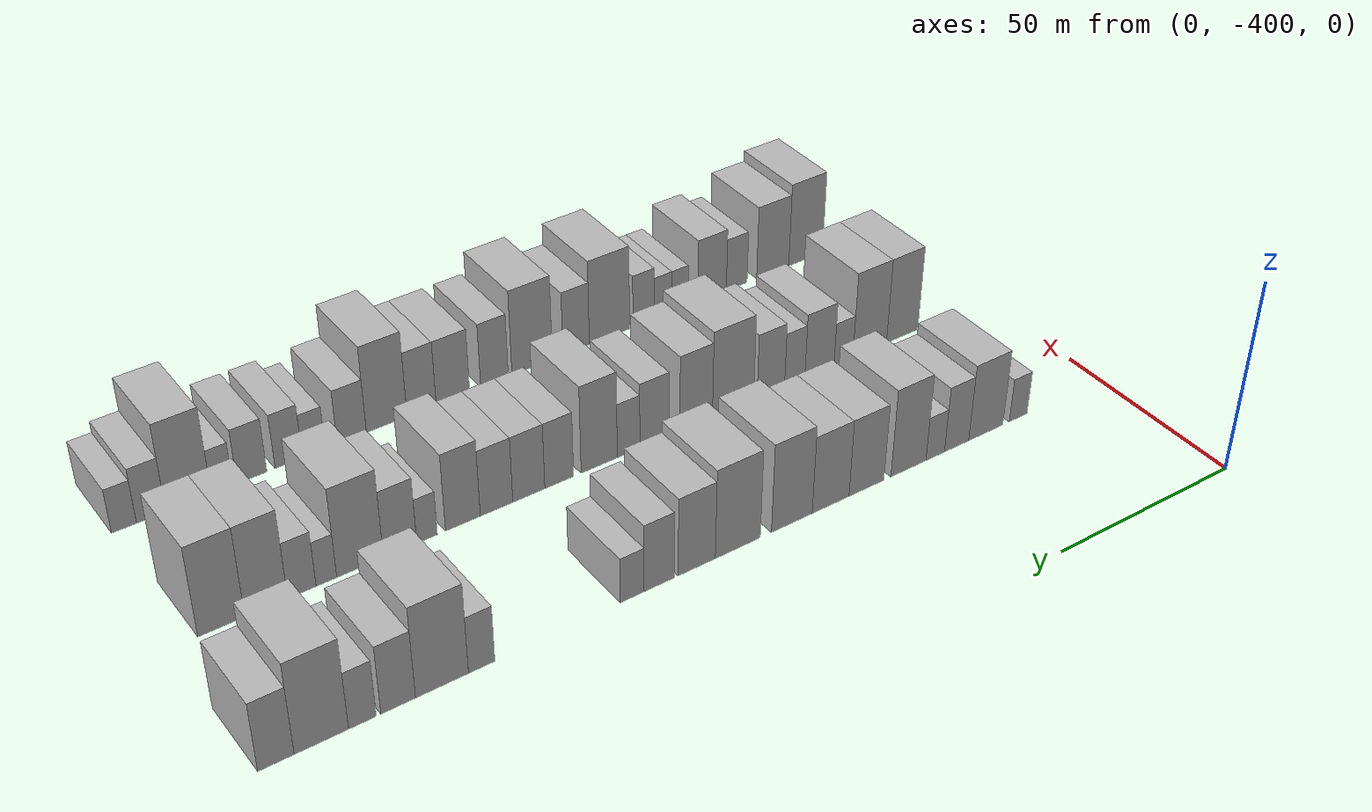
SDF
<sdf version="1.6">
 <world name="default">
  <model name="building_1">
   <static>1</static>
   <pose>50.0000 -374.2624 0 0.000000 0.000000 0.000000</pose>
   <link name="link">
    <pose>0 0 6.00 0 0 0</pose>
    <collision name="collision"><geometry><box><size>20.0000 5.4753 12.0000</size></box></geometry></collision>
    <visual name="visual">
     <cast_shadows>0</cast_shadows>
     <geometry><box><size>20.0000 5.4753 12.0000</size></box></geometry>
     <material>
      <script>
       <uri>model://HANNAS_wall/materials/scripts</uri>
       <uri>model://HANNAS_wall/materials/textures</uri>
       <name>vrc/HANNAS_wall</name>
      </script>
     </material>
    </visual>
   </link>
  </model>
  <model name="building_2">
   <static>1</static>
   <pose>50.0000 -364.3549 0 0.000000 0.000000 0.000000</pose>
   <link name="link">
    <pose>0 0 10.50 0 0 0</pose>
    <collision name="collision"><geometry><box><size>20.0000 10.3397 21.0000</size></box></geometry></collision>
    <visual name="visual">
     <cast_shadows>0</cast_shadows>
     <geometry><box><size>20.0000 10.3397 21.0000</size></box></geometry>
     <material>
      <script>
       <uri>model://HANNAS_wall/materials/scripts</uri>
       <uri>model://HANNAS_wall/materials/textures</uri>
       <name>vrc/HANNAS_wall</name>
      </script>
     </material>
    </visual>
   </link>
  </model>
  <model name="building_3">
   <static>1</static>
   <pose>50.0000 -355.5785 0 0.000000 0.000000 0.000000</pose>
   <link name="link">
    <pose>0 0 9.00 0 0 0</pose>
    <collision name="collision"><geometry><box><size>20.0000 7.2129 18.0000</size></box></geometry></collision>
    <visual name="visual">
     <cast_shadows>0</cast_shadows>
     <geometry><box><size>20.0000 7.2129 18.0000</size></box></geometry>
     <material>
      <script>
       <uri>model://HANNAS_wall/materials/scripts</uri>
       <uri>model://HANNAS_wall/materials/textures</uri>
       <name>vrc/HANNAS_wall</name>
      </script>
     </material>
    </visual>
   </link>
  </model>
  <model name="building_4">
   <static>1</static>
   <pose>50.0000 -349.2453 0 0.000000 0.000000 0.000000</pose>
   <link name="link">
    <pose>0 0 6.00 0 0 0</pose>
    <collision name="collision"><geometry><box><size>20.0000 5.4536 12.0000</size></box></geometry></collision>
    <visual name="visual">
     <cast_shadows>0</cast_shadows>
     <geometry><box><size>20.0000 5.4536 12.0000</size></box></geometry>
     <material>
      <script>
       <uri>model://HANNAS_wall/materials/scripts</uri>
       <uri>model://HANNAS_wall/materials/textures</uri>
       <name>vrc/HANNAS_wall</name>
      </script>
     </material>
    </visual>
   </link>
  </model>
  <model name="building_5">
   <static>1</static>
   <pose>50.0000 -341.4378 0 0.000000 0.000000 0.000000</pose>
   <link name="link">
    <pose>0 0 12.00 0 0 0</pose>
    <collision name="collision"><geometry><box><size>20.0000 10.1614 24.0000</size></box></geometry></collision>
    <visual name="visual">
     <cast_shadows>0</cast_shadows>
     <geometry><box><size>20.0000 10.1614 24.0000</size></box></geometry>
     <material>
      <script>
       <uri>model://HANNAS_wall/materials/scripts</uri>
       <uri>model://HANNAS_wall/materials/textures</uri>
       <name>vrc/HANNAS_wall</name>
      </script>
     </material>
    </visual>
   </link>
  </model>
  <model name="building_6">
   <static>1</static>
   <pose>50.0000 -329.4169 0 0.000000 0.000000 0.000000</pose>
   <link name="link">
    <pose>0 0 10.50 0 0 0</pose>
    <collision name="collision"><geometry><box><size>20.0000 9.8803 21.0000</size></box></geometry></collision>
    <visual name="visual">
     <cast_shadows>0</cast_shadows>
     <geometry><box><size>20.0000 9.8803 21.0000</size></box></geometry>
     <material>
      <script>
       <uri>model://HANNAS_wall/materials/scripts</uri>
       <uri>model://HANNAS_wall/materials/textures</uri>
       <name>vrc/HANNAS_wall</name>
      </script>
     </material>
    </visual>
   </link>
  </model>
  <model name="building_7">
   <static>1</static>
   <pose>50.0000 -319.3622 0 0.000000 0.000000 0.000000</pose>
   <link name="link">
    <pose>0 0 10.50 0 0 0</pose>
    <collision name="collision"><geometry><box><size>20.0000 10.2292 21.0000</size></box></geometry></collision>
    <visual name="visual">
     <cast_shadows>0</cast_shadows>
     <geometry><box><size>20.0000 10.2292 21.0000</size></box></geometry>
     <material>
      <script>
       <uri>model://HANNAS_wall/materials/scripts</uri>
       <uri>model://HANNAS_wall/materials/textures</uri>
       <name>vrc/HANNAS_wall</name>
      </script>
     </material>
    </visual>
   </link>
  </model>
  <model name="building_8">
   <static>1</static>
   <pose>50.0000 -308.7134 0 0.000000 0.000000 0.000000</pose>
   <link name="link">
    <pose>0 0 12.00 0 0 0</pose>
    <collision name="collision"><geometry><box><size>20.0000 11.0682 24.0000</size></box></geometry></collision>
    <visual name="visual">
     <cast_shadows>0</cast_shadows>
     <geometry><box><size>20.0000 11.0682 24.0000</size></box></geometry>
     <material>
      <script>
       <uri>model://HANNAS_wall/materials/scripts</uri>
       <uri>model://HANNAS_wall/materials/textures</uri>
       <name>vrc/HANNAS_wall</name>
      </script>
     </material>
    </visual>
   </link>
  </model>
  <model name="building_9">
   <static>1</static>
   <pose>50.0000 -294.2568 0 0.000000 0.000000 0.000000</pose>
   <link name="link">
    <pose>0 0 12.00 0 0 0</pose>
    <collision name="collision"><geometry><box><size>20.0000 11.8451 24.0000</size></box></geometry></collision>
    <visual name="visual">
     <cast_shadows>0</cast_shadows>
     <geometry><box><size>20.0000 11.8451 24.0000</size></box></geometry>
     <material>
      <script>
       <uri>model://HANNAS_wall/materials/scripts</uri>
       <uri>model://HANNAS_wall/materials/textures</uri>
       <name>vrc/HANNAS_wall</name>
      </script>
     </material>
    </visual>
   </link>
  </model>
  <model name="building_10">
   <static>1</static>
   <pose>50.0000 -283.5182 0 0.000000 0.000000 0.000000</pose>
   <link name="link">
    <pose>0 0 10.50 0 0 0</pose>
    <collision name="collision"><geometry><box><size>20.0000 9.6320 21.0000</size></box></geometry></collision>
    <visual name="visual">
     <cast_shadows>0</cast_shadows>
     <geometry><box><size>20.0000 9.6320 21.0000</size></box></geometry>
     <material>
      <script>
       <uri>model://HANNAS_wall/materials/scripts</uri>
       <uri>model://HANNAS_wall/materials/textures</uri>
       <name>vrc/HANNAS_wall</name>
      </script>
     </material>
    </visual>
   </link>
  </model>
  <model name="building_11">
   <static>1</static>
   <pose>50.0000 -273.9121 0 0.000000 0.000000 0.000000</pose>
   <link name="link">
    <pose>0 0 9.00 0 0 0</pose>
    <collision name="collision"><geometry><box><size>20.0000 7.5804 18.0000</size></box></geometry></collision>
    <visual name="visual">
     <cast_shadows>0</cast_shadows>
     <geometry><box><size>20.0000 7.5804 18.0000</size></box></geometry>
     <material>
      <script>
       <uri>model://HANNAS_wall/materials/scripts</uri>
       <uri>model://HANNAS_wall/materials/textures</uri>
       <name>vrc/HANNAS_wall</name>
      </script>
     </material>
    </visual>
   </link>
  </model>
  <model name="building_12">
   <static>1</static>
   <pose>50.0000 -267.1441 0 0.000000 0.000000 0.000000</pose>
   <link name="link">
    <pose>0 0 6.00 0 0 0</pose>
    <collision name="collision"><geometry><box><size>20.0000 5.9556 12.0000</size></box></geometry></collision>
    <visual name="visual">
     <cast_shadows>0</cast_shadows>
     <geometry><box><size>20.0000 5.9556 12.0000</size></box></geometry>
     <material>
      <script>
       <uri>model://HANNAS_wall/materials/scripts</uri>
       <uri>model://HANNAS_wall/materials/textures</uri>
       <name>vrc/HANNAS_wall</name>
      </script>
     </material>
    </visual>
   </link>
  </model>
  <model name="building_13">
   <static>1</static>
   <pose>50.0000 -231.0191 0 0.000000 0.000000 0.000000</pose>
   <link name="link">
    <pose>0 0 7.50 0 0 0</pose>
    <collision name="collision"><geometry><box><size>20.0000 6.0981 15.0000</size></box></geometry></collision>
    <visual name="visual">
     <cast_shadows>0</cast_shadows>
     <geometry><box><size>20.0000 6.0981 15.0000</size></box></geometry>
     <material>
      <script>
       <uri>model://HANNAS_wall/materials/scripts</uri>
       <uri>model://HANNAS_wall/materials/textures</uri>
       <name>vrc/HANNAS_wall</name>
      </script>
     </material>
    </visual>
   </link>
  </model>
  <model name="building_14">
   <static>1</static>
   <pose>50.0000 -221.9719 0 0.000000 0.000000 0.000000</pose>
   <link name="link">
    <pose>0 0 12.00 0 0 0</pose>
    <collision name="collision"><geometry><box><size>20.0000 11.9962 24.0000</size></box></geometry></collision>
    <visual name="visual">
     <cast_shadows>0</cast_shadows>
     <geometry><box><size>20.0000 11.9962 24.0000</size></box></geometry>
     <material>
      <script>
       <uri>model://HANNAS_wall/materials/scripts</uri>
       <uri>model://HANNAS_wall/materials/textures</uri>
       <name>vrc/HANNAS_wall</name>
      </script>
     </material>
    </visual>
   </link>
  </model>
  <model name="building_15">
   <static>1</static>
   <pose>50.0000 -212.1358 0 0.000000 0.000000 0.000000</pose>
   <link name="link">
    <pose>0 0 9.00 0 0 0</pose>
    <collision name="collision"><geometry><box><size>20.0000 7.6759 18.0000</size></box></geometry></collision>
    <visual name="visual">
     <cast_shadows>0</cast_shadows>
     <geometry><box><size>20.0000 7.6759 18.0000</size></box></geometry>
     <material>
      <script>
       <uri>model://HANNAS_wall/materials/scripts</uri>
       <uri>model://HANNAS_wall/materials/textures</uri>
       <name>vrc/HANNAS_wall</name>
      </script>
     </material>
    </visual>
   </link>
  </model>
  <model name="building_16">
   <static>1</static>
   <pose>50.0000 -204.2858 0 0.000000 0.000000 0.000000</pose>
   <link name="link">
    <pose>0 0 7.50 0 0 0</pose>
    <collision name="collision"><geometry><box><size>20.0000 6.0241 15.0000</size></box></geometry></collision>
    <visual name="visual">
     <cast_shadows>0</cast_shadows>
     <geometry><box><size>20.0000 6.0241 15.0000</size></box></geometry>
     <material>
      <script>
       <uri>model://HANNAS_wall/materials/scripts</uri>
       <uri>model://HANNAS_wall/materials/textures</uri>
       <name>vrc/HANNAS_wall</name>
      </script>
     </material>
    </visual>
   </link>
  </model>
  <model name="building_17">
   <static>1</static>
   <pose>50.0000 -195.4628 0 0.000000 0.000000 0.000000</pose>
   <link name="link">
    <pose>0 0 12.00 0 0 0</pose>
    <collision name="collision"><geometry><box><size>20.0000 11.6219 24.0000</size></box></geometry></collision>
    <visual name="visual">
     <cast_shadows>0</cast_shadows>
     <geometry><box><size>20.0000 11.6219 24.0000</size></box></geometry>
     <material>
      <script>
       <uri>model://HANNAS_wall/materials/scripts</uri>
       <uri>model://HANNAS_wall/materials/textures</uri>
       <name>vrc/HANNAS_wall</name>
      </script>
     </material>
    </visual>
   </link>
  </model>
  <model name="building_18">
   <static>1</static>
   <pose>50.0000 -185.8370 0 0.000000 0.000000 0.000000</pose>
   <link name="link">
    <pose>0 0 9.00 0 0 0</pose>
    <collision name="collision"><geometry><box><size>20.0000 7.6296 18.0000</size></box></geometry></collision>
    <visual name="visual">
     <cast_shadows>0</cast_shadows>
     <geometry><box><size>20.0000 7.6296 18.0000</size></box></geometry>
     <material>
      <script>
       <uri>model://HANNAS_wall/materials/scripts</uri>
       <uri>model://HANNAS_wall/materials/textures</uri>
       <name>vrc/HANNAS_wall</name>
      </script>
     </material>
    </visual>
   </link>
  </model>
  <model name="building_84">
   <static>1</static>
   <pose>90.0000 -373.0850 0 0.000000 0.000000 0.000000</pose>
   <link name="link">
    <pose>0 0 12.00 0 0 0</pose>
    <collision name="collision"><geometry><box><size>20.0000 9.8300 24.0000</size></box></geometry></collision>
    <visual name="visual">
     <cast_shadows>0</cast_shadows>
     <geometry><box><size>20.0000 9.8300 24.0000</size></box></geometry>
     <material>
      <script>
       <uri>model://HANNAS_wall/materials/scripts</uri>
       <uri>model://HANNAS_wall/materials/textures</uri>
       <name>vrc/HANNAS_wall</name>
      </script>
     </material>
    </visual>
   </link>
  </model>
  <model name="building_85">
   <static>1</static>
   <pose>90.0000 -362.9662 0 0.000000 0.000000 0.000000</pose>
   <link name="link">
    <pose>0 0 12.00 0 0 0</pose>
    <collision name="collision"><geometry><box><size>20.0000 10.4076 24.0000</size></box></geometry></collision>
    <visual name="visual">
     <cast_shadows>0</cast_shadows>
     <geometry><box><size>20.0000 10.4076 24.0000</size></box></geometry>
     <material>
      <script>
       <uri>model://HANNAS_wall/materials/scripts</uri>
       <uri>model://HANNAS_wall/materials/textures</uri>
       <name>vrc/HANNAS_wall</name>
      </script>
     </material>
    </visual>
   </link>
  </model>
  <model name="building_86">
   <static>1</static>
   <pose>90.0000 -354.8962 0 0.000000 0.000000 0.000000</pose>
   <link name="link">
    <pose>0 0 6.00 0 0 0</pose>
    <collision name="collision"><geometry><box><size>20.0000 5.7325 12.0000</size></box></geometry></collision>
    <visual name="visual">
     <cast_shadows>0</cast_shadows>
     <geometry><box><size>20.0000 5.7325 12.0000</size></box></geometry>
     <material>
      <script>
       <uri>model://HANNAS_wall/materials/scripts</uri>
       <uri>model://HANNAS_wall/materials/textures</uri>
       <name>vrc/HANNAS_wall</name>
      </script>
     </material>
    </visual>
   </link>
  </model>
  <model name="building_87">
   <static>1</static>
   <pose>90.0000 -347.6362 0 0.000000 0.000000 0.000000</pose>
   <link name="link">
    <pose>0 0 9.00 0 0 0</pose>
    <collision name="collision"><geometry><box><size>20.0000 8.7874 18.0000</size></box></geometry></collision>
    <visual name="visual">
     <cast_shadows>0</cast_shadows>
     <geometry><box><size>20.0000 8.7874 18.0000</size></box></geometry>
     <material>
      <script>
       <uri>model://HANNAS_wall/materials/scripts</uri>
       <uri>model://HANNAS_wall/materials/textures</uri>
       <name>vrc/HANNAS_wall</name>
      </script>
     </material>
    </visual>
   </link>
  </model>
  <model name="building_88">
   <static>1</static>
   <pose>90.0000 -340.2338 0 0.000000 0.000000 0.000000</pose>
   <link name="link">
    <pose>0 0 7.50 0 0 0</pose>
    <collision name="collision"><geometry><box><size>20.0000 6.0174 15.0000</size></box></geometry></collision>
    <visual name="visual">
     <cast_shadows>0</cast_shadows>
     <geometry><box><size>20.0000 6.0174 15.0000</size></box></geometry>
     <material>
      <script>
       <uri>model://HANNAS_wall/materials/scripts</uri>
       <uri>model://HANNAS_wall/materials/textures</uri>
       <name>vrc/HANNAS_wall</name>
      </script>
     </material>
    </visual>
   </link>
  </model>
  <model name="building_89">
   <static>1</static>
   <pose>90.0000 -333.1998 0 0.000000 0.000000 0.000000</pose>
   <link name="link">
    <pose>0 0 9.00 0 0 0</pose>
    <collision name="collision"><geometry><box><size>20.0000 8.0504 18.0000</size></box></geometry></collision>
    <visual name="visual">
     <cast_shadows>0</cast_shadows>
     <geometry><box><size>20.0000 8.0504 18.0000</size></box></geometry>
     <material>
      <script>
       <uri>model://HANNAS_wall/materials/scripts</uri>
       <uri>model://HANNAS_wall/materials/textures</uri>
       <name>vrc/HANNAS_wall</name>
      </script>
     </material>
    </visual>
   </link>
  </model>
  <model name="building_90">
   <static>1</static>
   <pose>90.0000 -322.2771 0 0.000000 0.000000 0.000000</pose>
   <link name="link">
    <pose>0 0 12.00 0 0 0</pose>
    <collision name="collision"><geometry><box><size>20.0000 11.7950 24.0000</size></box></geometry></collision>
    <visual name="visual">
     <cast_shadows>0</cast_shadows>
     <geometry><box><size>20.0000 11.7950 24.0000</size></box></geometry>
     <material>
      <script>
       <uri>model://HANNAS_wall/materials/scripts</uri>
       <uri>model://HANNAS_wall/materials/textures</uri>
       <name>vrc/HANNAS_wall</name>
      </script>
     </material>
    </visual>
   </link>
  </model>
  <model name="building_91">
   <static>1</static>
   <pose>90.0000 -311.7800 0 0.000000 0.000000 0.000000</pose>
   <link name="link">
    <pose>0 0 10.50 0 0 0</pose>
    <collision name="collision"><geometry><box><size>20.0000 9.1992 21.0000</size></box></geometry></collision>
    <visual name="visual">
     <cast_shadows>0</cast_shadows>
     <geometry><box><size>20.0000 9.1992 21.0000</size></box></geometry>
     <material>
      <script>
       <uri>model://HANNAS_wall/materials/scripts</uri>
       <uri>model://HANNAS_wall/materials/textures</uri>
       <name>vrc/HANNAS_wall</name>
      </script>
     </material>
    </visual>
   </link>
  </model>
  <model name="building_92">
   <static>1</static>
   <pose>90.0000 -300.1970 0 0.000000 0.000000 0.000000</pose>
   <link name="link">
    <pose>0 0 9.00 0 0 0</pose>
    <collision name="collision"><geometry><box><size>20.0000 7.9668 18.0000</size></box></geometry></collision>
    <visual name="visual">
     <cast_shadows>0</cast_shadows>
     <geometry><box><size>20.0000 7.9668 18.0000</size></box></geometry>
     <material>
      <script>
       <uri>model://HANNAS_wall/materials/scripts</uri>
       <uri>model://HANNAS_wall/materials/textures</uri>
       <name>vrc/HANNAS_wall</name>
      </script>
     </material>
    </visual>
   </link>
  </model>
  <model name="building_93">
   <static>1</static>
   <pose>90.0000 -293.1431 0 0.000000 0.000000 0.000000</pose>
   <link name="link">
    <pose>0 0 7.50 0 0 0</pose>
    <collision name="collision"><geometry><box><size>20.0000 6.1410 15.0000</size></box></geometry></collision>
    <visual name="visual">
     <cast_shadows>0</cast_shadows>
     <geometry><box><size>20.0000 6.1410 15.0000</size></box></geometry>
     <material>
      <script>
       <uri>model://HANNAS_wall/materials/scripts</uri>
       <uri>model://HANNAS_wall/materials/textures</uri>
       <name>vrc/HANNAS_wall</name>
      </script>
     </material>
    </visual>
   </link>
  </model>
  <model name="building_94">
   <static>1</static>
   <pose>90.0000 -285.2422 0 0.000000 0.000000 0.000000</pose>
   <link name="link">
    <pose>0 0 12.00 0 0 0</pose>
    <collision name="collision"><geometry><box><size>20.0000 9.6608 24.0000</size></box></geometry></collision>
    <visual name="visual">
     <cast_shadows>0</cast_shadows>
     <geometry><box><size>20.0000 9.6608 24.0000</size></box></geometry>
     <material>
      <script>
       <uri>model://HANNAS_wall/materials/scripts</uri>
       <uri>model://HANNAS_wall/materials/textures</uri>
       <name>vrc/HANNAS_wall</name>
      </script>
     </material>
    </visual>
   </link>
  </model>
  <model name="building_95">
   <static>1</static>
   <pose>90.0000 -274.6562 0 0.000000 0.000000 0.000000</pose>
   <link name="link">
    <pose>0 0 9.00 0 0 0</pose>
    <collision name="collision"><geometry><box><size>20.0000 7.5111 18.0000</size></box></geometry></collision>
    <visual name="visual">
     <cast_shadows>0</cast_shadows>
     <geometry><box><size>20.0000 7.5111 18.0000</size></box></geometry>
     <material>
      <script>
       <uri>model://HANNAS_wall/materials/scripts</uri>
       <uri>model://HANNAS_wall/materials/textures</uri>
       <name>vrc/HANNAS_wall</name>
      </script>
     </material>
    </visual>
   </link>
  </model>
  <model name="building_96">
   <static>1</static>
   <pose>90.0000 -266.7698 0 0.000000 0.000000 0.000000</pose>
   <link name="link">
    <pose>0 0 9.00 0 0 0</pose>
    <collision name="collision"><geometry><box><size>20.0000 8.2617 18.0000</size></box></geometry></collision>
    <visual name="visual">
     <cast_shadows>0</cast_shadows>
     <geometry><box><size>20.0000 8.2617 18.0000</size></box></geometry>
     <material>
      <script>
       <uri>model://HANNAS_wall/materials/scripts</uri>
       <uri>model://HANNAS_wall/materials/textures</uri>
       <name>vrc/HANNAS_wall</name>
      </script>
     </material>
    </visual>
   </link>
  </model>
  <model name="building_97">
   <static>1</static>
   <pose>90.0000 -258.5231 0 0.000000 0.000000 0.000000</pose>
   <link name="link">
    <pose>0 0 9.00 0 0 0</pose>
    <collision name="collision"><geometry><box><size>20.0000 8.2316 18.0000</size></box></geometry></collision>
    <visual name="visual">
     <cast_shadows>0</cast_shadows>
     <geometry><box><size>20.0000 8.2316 18.0000</size></box></geometry>
     <material>
      <script>
       <uri>model://HANNAS_wall/materials/scripts</uri>
       <uri>model://HANNAS_wall/materials/textures</uri>
       <name>vrc/HANNAS_wall</name>
      </script>
     </material>
    </visual>
   </link>
  </model>
  <model name="building_98">
   <static>1</static>
   <pose>90.0000 -250.0714 0 0.000000 0.000000 0.000000</pose>
   <link name="link">
    <pose>0 0 10.50 0 0 0</pose>
    <collision name="collision"><geometry><box><size>20.0000 8.6719 21.0000</size></box></geometry></collision>
    <visual name="visual">
     <cast_shadows>0</cast_shadows>
     <geometry><box><size>20.0000 8.6719 21.0000</size></box></geometry>
     <material>
      <script>
       <uri>model://HANNAS_wall/materials/scripts</uri>
       <uri>model://HANNAS_wall/materials/textures</uri>
       <name>vrc/HANNAS_wall</name>
      </script>
     </material>
    </visual>
   </link>
  </model>
  <model name="building_99">
   <static>1</static>
   <pose>90.0000 -241.2178 0 0.000000 0.000000 0.000000</pose>
   <link name="link">
    <pose>0 0 6.00 0 0 0</pose>
    <collision name="collision"><geometry><box><size>20.0000 5.0352 12.0000</size></box></geometry></collision>
    <visual name="visual">
     <cast_shadows>0</cast_shadows>
     <geometry><box><size>20.0000 5.0352 12.0000</size></box></geometry>
     <material>
      <script>
       <uri>model://HANNAS_wall/materials/scripts</uri>
       <uri>model://HANNAS_wall/materials/textures</uri>
       <name>vrc/HANNAS_wall</name>
      </script>
     </material>
    </visual>
   </link>
  </model>
  <model name="building_100">
   <static>1</static>
   <pose>90.0000 -234.6747 0 0.000000 0.000000 0.000000</pose>
   <link name="link">
    <pose>0 0 9.00 0 0 0</pose>
    <collision name="collision"><geometry><box><size>20.0000 8.0510 18.0000</size></box></geometry></collision>
    <visual name="visual">
     <cast_shadows>0</cast_shadows>
     <geometry><box><size>20.0000 8.0510 18.0000</size></box></geometry>
     <material>
      <script>
       <uri>model://HANNAS_wall/materials/scripts</uri>
       <uri>model://HANNAS_wall/materials/textures</uri>
       <name>vrc/HANNAS_wall</name>
      </script>
     </material>
    </visual>
   </link>
  </model>
  <model name="building_101">
   <static>1</static>
   <pose>90.0000 -225.1127 0 0.000000 0.000000 0.000000</pose>
   <link name="link">
    <pose>0 0 12.00 0 0 0</pose>
    <collision name="collision"><geometry><box><size>20.0000 11.0730 24.0000</size></box></geometry></collision>
    <visual name="visual">
     <cast_shadows>0</cast_shadows>
     <geometry><box><size>20.0000 11.0730 24.0000</size></box></geometry>
     <material>
      <script>
       <uri>model://HANNAS_wall/materials/scripts</uri>
       <uri>model://HANNAS_wall/materials/textures</uri>
       <name>vrc/HANNAS_wall</name>
      </script>
     </material>
    </visual>
   </link>
  </model>
  <model name="building_102">
   <static>1</static>
   <pose>90.0000 -217.1694 0 0.000000 0.000000 0.000000</pose>
   <link name="link">
    <pose>0 0 6.00 0 0 0</pose>
    <collision name="collision"><geometry><box><size>20.0000 4.8136 12.0000</size></box></geometry></collision>
    <visual name="visual">
     <cast_shadows>0</cast_shadows>
     <geometry><box><size>20.0000 4.8136 12.0000</size></box></geometry>
     <material>
      <script>
       <uri>model://HANNAS_wall/materials/scripts</uri>
       <uri>model://HANNAS_wall/materials/textures</uri>
       <name>vrc/HANNAS_wall</name>
      </script>
     </material>
    </visual>
   </link>
  </model>
  <model name="building_103">
   <static>1</static>
   <pose>90.0000 -211.4903 0 0.000000 0.000000 0.000000</pose>
   <link name="link">
    <pose>0 0 7.50 0 0 0</pose>
    <collision name="collision"><geometry><box><size>20.0000 6.5446 15.0000</size></box></geometry></collision>
    <visual name="visual">
     <cast_shadows>0</cast_shadows>
     <geometry><box><size>20.0000 6.5446 15.0000</size></box></geometry>
     <material>
      <script>
       <uri>model://HANNAS_wall/materials/scripts</uri>
       <uri>model://HANNAS_wall/materials/textures</uri>
       <name>vrc/HANNAS_wall</name>
      </script>
     </material>
    </visual>
   </link>
  </model>
  <model name="building_104">
   <static>1</static>
   <pose>90.0000 -203.3711 0 0.000000 0.000000 0.000000</pose>
   <link name="link">
    <pose>0 0 12.00 0 0 0</pose>
    <collision name="collision"><geometry><box><size>20.0000 9.6937 24.0000</size></box></geometry></collision>
    <visual name="visual">
     <cast_shadows>0</cast_shadows>
     <geometry><box><size>20.0000 9.6937 24.0000</size></box></geometry>
     <material>
      <script>
       <uri>model://HANNAS_wall/materials/scripts</uri>
       <uri>model://HANNAS_wall/materials/textures</uri>
       <name>vrc/HANNAS_wall</name>
      </script>
     </material>
    </visual>
   </link>
  </model>
  <model name="building_105">
   <static>1</static>
   <pose>90.0000 -193.3030 0 0.000000 0.000000 0.000000</pose>
   <link name="link">
    <pose>0 0 12.00 0 0 0</pose>
    <collision name="collision"><geometry><box><size>20.0000 10.4424 24.0000</size></box></geometry></collision>
    <visual name="visual">
     <cast_shadows>0</cast_shadows>
     <geometry><box><size>20.0000 10.4424 24.0000</size></box></geometry>
     <material>
      <script>
       <uri>model://HANNAS_wall/materials/scripts</uri>
       <uri>model://HANNAS_wall/materials/textures</uri>
       <name>vrc/HANNAS_wall</name>
      </script>
     </material>
    </visual>
   </link>
  </model>
  <model name="building_164">
   <static>1</static>
   <pose>130.0000 -374.5532 0 0.000000 0.000000 0.000000</pose>
   <link name="link">
    <pose>0 0 12.00 0 0 0</pose>
    <collision name="collision"><geometry><box><size>20.0000 10.8935 24.0000</size></box></geometry></collision>
    <visual name="visual">
     <cast_shadows>0</cast_shadows>
     <geometry><box><size>20.0000 10.8935 24.0000</size></box></geometry>
     <material>
      <script>
       <uri>model://HANNAS_wall/materials/scripts</uri>
       <uri>model://HANNAS_wall/materials/textures</uri>
       <name>vrc/HANNAS_wall</name>
      </script>
     </material>
    </visual>
   </link>
  </model>
  <model name="building_165">
   <static>1</static>
   <pose>130.0000 -364.0138 0 0.000000 0.000000 0.000000</pose>
   <link name="link">
    <pose>0 0 10.50 0 0 0</pose>
    <collision name="collision"><geometry><box><size>20.0000 10.1853 21.0000</size></box></geometry></collision>
    <visual name="visual">
     <cast_shadows>0</cast_shadows>
     <geometry><box><size>20.0000 10.1853 21.0000</size></box></geometry>
     <material>
      <script>
       <uri>model://HANNAS_wall/materials/scripts</uri>
       <uri>model://HANNAS_wall/materials/textures</uri>
       <name>vrc/HANNAS_wall</name>
      </script>
     </material>
    </visual>
   </link>
  </model>
  <model name="building_166">
   <static>1</static>
   <pose>130.0000 -352.7016 0 0.000000 0.000000 0.000000</pose>
   <link name="link">
    <pose>0 0 7.50 0 0 0</pose>
    <collision name="collision"><geometry><box><size>20.0000 6.4391 15.0000</size></box></geometry></collision>
    <visual name="visual">
     <cast_shadows>0</cast_shadows>
     <geometry><box><size>20.0000 6.4391 15.0000</size></box></geometry>
     <material>
      <script>
       <uri>model://HANNAS_wall/materials/scripts</uri>
       <uri>model://HANNAS_wall/materials/textures</uri>
       <name>vrc/HANNAS_wall</name>
      </script>
     </material>
    </visual>
   </link>
  </model>
  <model name="building_167">
   <static>1</static>
   <pose>130.0000 -345.1018 0 0.000000 0.000000 0.000000</pose>
   <link name="link">
    <pose>0 0 9.00 0 0 0</pose>
    <collision name="collision"><geometry><box><size>20.0000 8.7606 18.0000</size></box></geometry></collision>
    <visual name="visual">
     <cast_shadows>0</cast_shadows>
     <geometry><box><size>20.0000 8.7606 18.0000</size></box></geometry>
     <material>
      <script>
       <uri>model://HANNAS_wall/materials/scripts</uri>
       <uri>model://HANNAS_wall/materials/textures</uri>
       <name>vrc/HANNAS_wall</name>
      </script>
     </material>
    </visual>
   </link>
  </model>
  <model name="building_168">
   <static>1</static>
   <pose>130.0000 -335.2786 0 0.000000 0.000000 0.000000</pose>
   <link name="link">
    <pose>0 0 6.00 0 0 0</pose>
    <collision name="collision"><geometry><box><size>20.0000 4.8858 12.0000</size></box></geometry></collision>
    <visual name="visual">
     <cast_shadows>0</cast_shadows>
     <geometry><box><size>20.0000 4.8858 12.0000</size></box></geometry>
     <material>
      <script>
       <uri>model://HANNAS_wall/materials/scripts</uri>
       <uri>model://HANNAS_wall/materials/textures</uri>
       <name>vrc/HANNAS_wall</name>
      </script>
     </material>
    </visual>
   </link>
  </model>
  <model name="building_169">
   <static>1</static>
   <pose>130.0000 -330.2200 0 0.000000 0.000000 0.000000</pose>
   <link name="link">
    <pose>0 0 6.00 0 0 0</pose>
    <collision name="collision"><geometry><box><size>20.0000 5.2313 12.0000</size></box></geometry></collision>
    <visual name="visual">
     <cast_shadows>0</cast_shadows>
     <geometry><box><size>20.0000 5.2313 12.0000</size></box></geometry>
     <material>
      <script>
       <uri>model://HANNAS_wall/materials/scripts</uri>
       <uri>model://HANNAS_wall/materials/textures</uri>
       <name>vrc/HANNAS_wall</name>
      </script>
     </material>
    </visual>
   </link>
  </model>
  <model name="building_170">
   <static>1</static>
   <pose>130.0000 -324.4595 0 0.000000 0.000000 0.000000</pose>
   <link name="link">
    <pose>0 0 7.50 0 0 0</pose>
    <collision name="collision"><geometry><box><size>20.0000 6.2897 15.0000</size></box></geometry></collision>
    <visual name="visual">
     <cast_shadows>0</cast_shadows>
     <geometry><box><size>20.0000 6.2897 15.0000</size></box></geometry>
     <material>
      <script>
       <uri>model://HANNAS_wall/materials/scripts</uri>
       <uri>model://HANNAS_wall/materials/textures</uri>
       <name>vrc/HANNAS_wall</name>
      </script>
     </material>
    </visual>
   </link>
  </model>
  <model name="building_171">
   <static>1</static>
   <pose>130.0000 -314.4628 0 0.000000 0.000000 0.000000</pose>
   <link name="link">
    <pose>0 0 12.00 0 0 0</pose>
    <collision name="collision"><geometry><box><size>20.0000 11.7036 24.0000</size></box></geometry></collision>
    <visual name="visual">
     <cast_shadows>0</cast_shadows>
     <geometry><box><size>20.0000 11.7036 24.0000</size></box></geometry>
     <material>
      <script>
       <uri>model://HANNAS_wall/materials/scripts</uri>
       <uri>model://HANNAS_wall/materials/textures</uri>
       <name>vrc/HANNAS_wall</name>
      </script>
     </material>
    </visual>
   </link>
  </model>
  <model name="building_172">
   <static>1</static>
   <pose>130.0000 -304.8387 0 0.000000 0.000000 0.000000</pose>
   <link name="link">
    <pose>0 0 9.00 0 0 0</pose>
    <collision name="collision"><geometry><box><size>20.0000 7.5446 18.0000</size></box></geometry></collision>
    <visual name="visual">
     <cast_shadows>0</cast_shadows>
     <geometry><box><size>20.0000 7.5446 18.0000</size></box></geometry>
     <material>
      <script>
       <uri>model://HANNAS_wall/materials/scripts</uri>
       <uri>model://HANNAS_wall/materials/textures</uri>
       <name>vrc/HANNAS_wall</name>
      </script>
     </material>
    </visual>
   </link>
  </model>
  <model name="building_173">
   <static>1</static>
   <pose>130.0000 -292.4309 0 0.000000 0.000000 0.000000</pose>
   <link name="link">
    <pose>0 0 12.00 0 0 0</pose>
    <collision name="collision"><geometry><box><size>20.0000 11.2710 24.0000</size></box></geometry></collision>
    <visual name="visual">
     <cast_shadows>0</cast_shadows>
     <geometry><box><size>20.0000 11.2710 24.0000</size></box></geometry>
     <material>
      <script>
       <uri>model://HANNAS_wall/materials/scripts</uri>
       <uri>model://HANNAS_wall/materials/textures</uri>
       <name>vrc/HANNAS_wall</name>
      </script>
     </material>
    </visual>
   </link>
  </model>
  <model name="building_174">
   <static>1</static>
   <pose>130.0000 -282.0168 0 0.000000 0.000000 0.000000</pose>
   <link name="link">
    <pose>0 0 9.00 0 0 0</pose>
    <collision name="collision"><geometry><box><size>20.0000 7.5571 18.0000</size></box></geometry></collision>
    <visual name="visual">
     <cast_shadows>0</cast_shadows>
     <geometry><box><size>20.0000 7.5571 18.0000</size></box></geometry>
     <material>
      <script>
       <uri>model://HANNAS_wall/materials/scripts</uri>
       <uri>model://HANNAS_wall/materials/textures</uri>
       <name>vrc/HANNAS_wall</name>
      </script>
     </material>
    </visual>
   </link>
  </model>
  <model name="building_175">
   <static>1</static>
   <pose>130.0000 -270.7511 0 0.000000 0.000000 0.000000</pose>
   <link name="link">
    <pose>0 0 9.00 0 0 0</pose>
    <collision name="collision"><geometry><box><size>20.0000 8.9744 18.0000</size></box></geometry></collision>
    <visual name="visual">
     <cast_shadows>0</cast_shadows>
     <geometry><box><size>20.0000 8.9744 18.0000</size></box></geometry>
     <material>
      <script>
       <uri>model://HANNAS_wall/materials/scripts</uri>
       <uri>model://HANNAS_wall/materials/textures</uri>
       <name>vrc/HANNAS_wall</name>
      </script>
     </material>
    </visual>
   </link>
  </model>
  <model name="building_176">
   <static>1</static>
   <pose>130.0000 -262.4172 0 0.000000 0.000000 0.000000</pose>
   <link name="link">
    <pose>0 0 9.00 0 0 0</pose>
    <collision name="collision"><geometry><box><size>20.0000 7.6933 18.0000</size></box></geometry></collision>
    <visual name="visual">
     <cast_shadows>0</cast_shadows>
     <geometry><box><size>20.0000 7.6933 18.0000</size></box></geometry>
     <material>
      <script>
       <uri>model://HANNAS_wall/materials/scripts</uri>
       <uri>model://HANNAS_wall/materials/textures</uri>
       <name>vrc/HANNAS_wall</name>
      </script>
     </material>
    </visual>
   </link>
  </model>
  <model name="building_177">
   <static>1</static>
   <pose>130.0000 -253.2876 0 0.000000 0.000000 0.000000</pose>
   <link name="link">
    <pose>0 0 12.00 0 0 0</pose>
    <collision name="collision"><geometry><box><size>20.0000 10.5659 24.0000</size></box></geometry></collision>
    <visual name="visual">
     <cast_shadows>0</cast_shadows>
     <geometry><box><size>20.0000 10.5659 24.0000</size></box></geometry>
     <material>
      <script>
       <uri>model://HANNAS_wall/materials/scripts</uri>
       <uri>model://HANNAS_wall/materials/textures</uri>
       <name>vrc/HANNAS_wall</name>
      </script>
     </material>
    </visual>
   </link>
  </model>
  <model name="building_178">
   <static>1</static>
   <pose>130.0000 -244.2714 0 0.000000 0.000000 0.000000</pose>
   <link name="link">
    <pose>0 0 7.50 0 0 0</pose>
    <collision name="collision"><geometry><box><size>20.0000 7.4665 15.0000</size></box></geometry></collision>
    <visual name="visual">
     <cast_shadows>0</cast_shadows>
     <geometry><box><size>20.0000 7.4665 15.0000</size></box></geometry>
     <material>
      <script>
       <uri>model://HANNAS_wall/materials/scripts</uri>
       <uri>model://HANNAS_wall/materials/textures</uri>
       <name>vrc/HANNAS_wall</name>
      </script>
     </material>
    </visual>
   </link>
  </model>
  <model name="building_179">
   <static>1</static>
   <pose>130.0000 -234.6670 0 0.000000 0.000000 0.000000</pose>
   <link name="link">
    <pose>0 0 6.00 0 0 0</pose>
    <collision name="collision"><geometry><box><size>20.0000 5.7423 12.0000</size></box></geometry></collision>
    <visual name="visual">
     <cast_shadows>0</cast_shadows>
     <geometry><box><size>20.0000 5.7423 12.0000</size></box></geometry>
     <material>
      <script>
       <uri>model://HANNAS_wall/materials/scripts</uri>
       <uri>model://HANNAS_wall/materials/textures</uri>
       <name>vrc/HANNAS_wall</name>
      </script>
     </material>
    </visual>
   </link>
  </model>
  <model name="building_180">
   <static>1</static>
   <pose>130.0000 -228.4150 0 0.000000 0.000000 0.000000</pose>
   <link name="link">
    <pose>0 0 7.50 0 0 0</pose>
    <collision name="collision"><geometry><box><size>20.0000 6.7617 15.0000</size></box></geometry></collision>
    <visual name="visual">
     <cast_shadows>0</cast_shadows>
     <geometry><box><size>20.0000 6.7617 15.0000</size></box></geometry>
     <material>
      <script>
       <uri>model://HANNAS_wall/materials/scripts</uri>
       <uri>model://HANNAS_wall/materials/textures</uri>
       <name>vrc/HANNAS_wall</name>
      </script>
     </material>
    </visual>
   </link>
  </model>
  <model name="building_181">
   <static>1</static>
   <pose>130.0000 -219.3977 0 0.000000 0.000000 0.000000</pose>
   <link name="link">
    <pose>0 0 7.50 0 0 0</pose>
    <collision name="collision"><geometry><box><size>20.0000 7.2728 15.0000</size></box></geometry></collision>
    <visual name="visual">
     <cast_shadows>0</cast_shadows>
     <geometry><box><size>20.0000 7.2728 15.0000</size></box></geometry>
     <material>
      <script>
       <uri>model://HANNAS_wall/materials/scripts</uri>
       <uri>model://HANNAS_wall/materials/textures</uri>
       <name>vrc/HANNAS_wall</name>
      </script>
     </material>
    </visual>
   </link>
  </model>
  <model name="building_182">
   <static>1</static>
   <pose>130.0000 -212.1667 0 0.000000 0.000000 0.000000</pose>
   <link name="link">
    <pose>0 0 6.00 0 0 0</pose>
    <collision name="collision"><geometry><box><size>20.0000 5.1892 12.0000</size></box></geometry></collision>
    <visual name="visual">
     <cast_shadows>0</cast_shadows>
     <geometry><box><size>20.0000 5.1892 12.0000</size></box></geometry>
     <material>
      <script>
       <uri>model://HANNAS_wall/materials/scripts</uri>
       <uri>model://HANNAS_wall/materials/textures</uri>
       <name>vrc/HANNAS_wall</name>
      </script>
     </material>
    </visual>
   </link>
  </model>
  <model name="building_183">
   <static>1</static>
   <pose>130.0000 -204.2132 0 0.000000 0.000000 0.000000</pose>
   <link name="link">
    <pose>0 0 12.00 0 0 0</pose>
    <collision name="collision"><geometry><box><size>20.0000 10.7178 24.0000</size></box></geometry></collision>
    <visual name="visual">
     <cast_shadows>0</cast_shadows>
     <geometry><box><size>20.0000 10.7178 24.0000</size></box></geometry>
     <material>
      <script>
       <uri>model://HANNAS_wall/materials/scripts</uri>
       <uri>model://HANNAS_wall/materials/textures</uri>
       <name>vrc/HANNAS_wall</name>
      </script>
     </material>
    </visual>
   </link>
  </model>
  <model name="building_184">
   <static>1</static>
   <pose>130.0000 -195.4456 0 0.000000 0.000000 0.000000</pose>
   <link name="link">
    <pose>0 0 7.50 0 0 0</pose>
    <collision name="collision"><geometry><box><size>20.0000 6.8173 15.0000</size></box></geometry></collision>
    <visual name="visual">
     <cast_shadows>0</cast_shadows>
     <geometry><box><size>20.0000 6.8173 15.0000</size></box></geometry>
     <material>
      <script>
       <uri>model://HANNAS_wall/materials/scripts</uri>
       <uri>model://HANNAS_wall/materials/textures</uri>
       <name>vrc/HANNAS_wall</name>
      </script>
     </material>
    </visual>
   </link>
  </model>
  <model name="building_185">
   <static>1</static>
   <pose>130.0000 -189.1690 0 0.000000 0.000000 0.000000</pose>
   <link name="link">
    <pose>0 0 6.00 0 0 0</pose>
    <collision name="collision"><geometry><box><size>20.0000 5.7360 12.0000</size></box></geometry></collision>
    <visual name="visual">
     <cast_shadows>0</cast_shadows>
     <geometry><box><size>20.0000 5.7360 12.0000</size></box></geometry>
     <material>
      <script>
       <uri>model://HANNAS_wall/materials/scripts</uri>
       <uri>model://HANNAS_wall/materials/textures</uri>
       <name>vrc/HANNAS_wall</name>
      </script>
     </material>
    </visual>
   </link>
  </model>
 </world>
</sdf>
